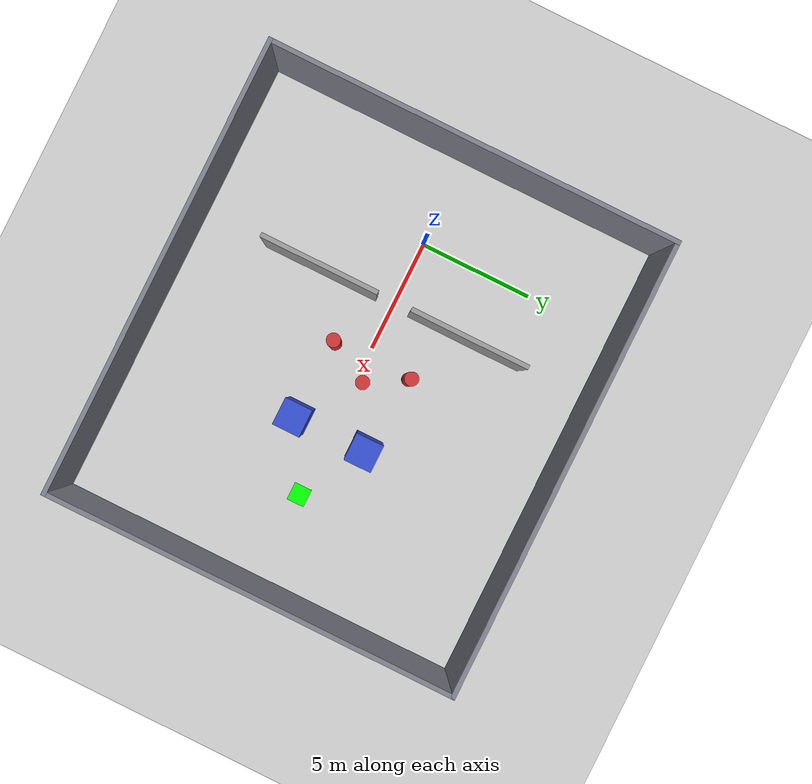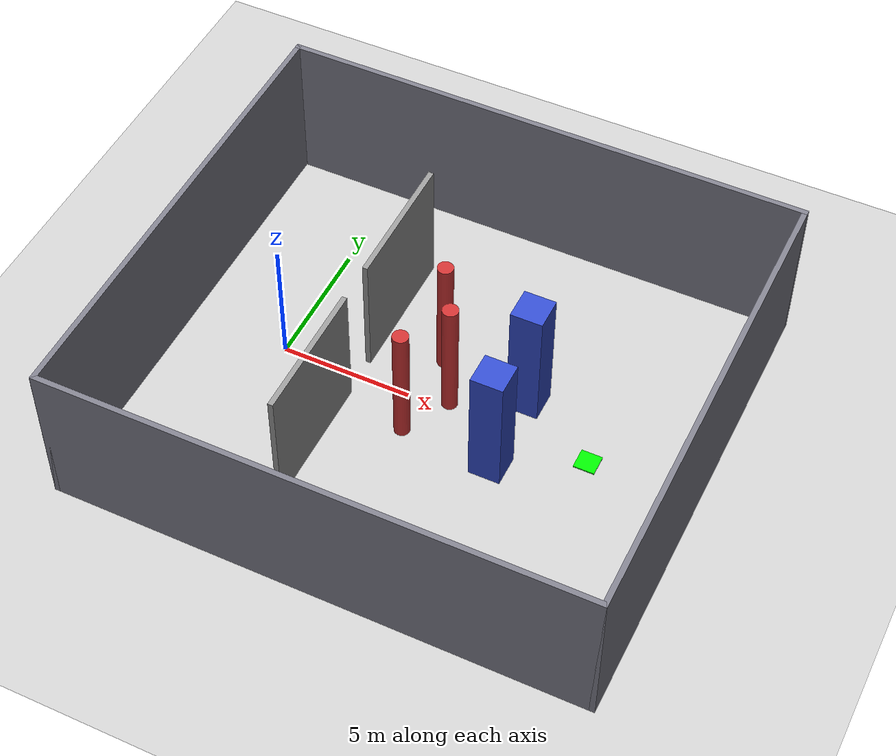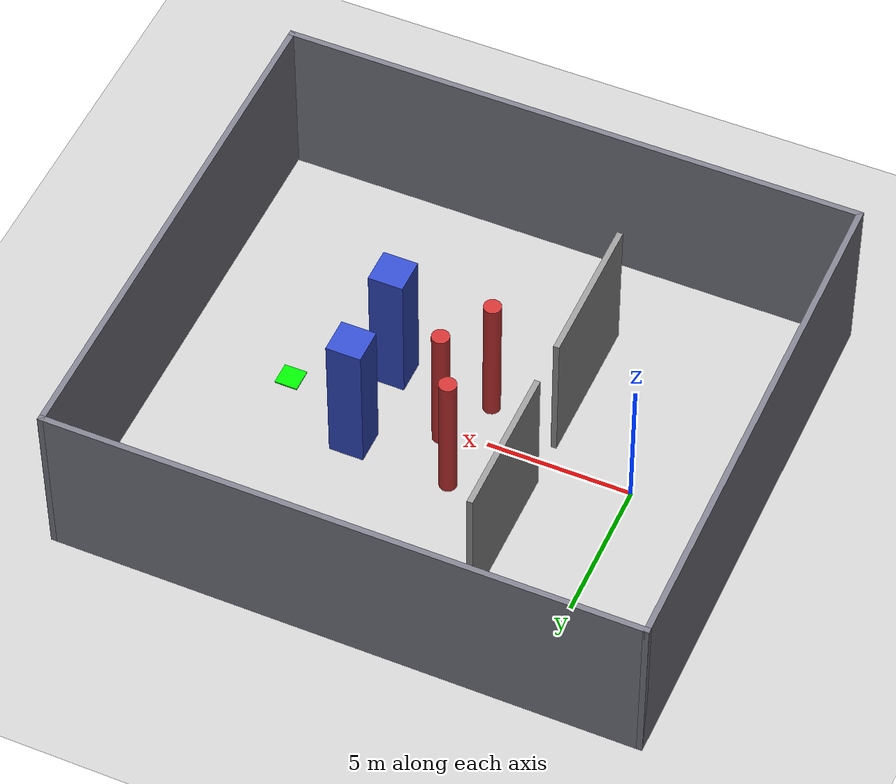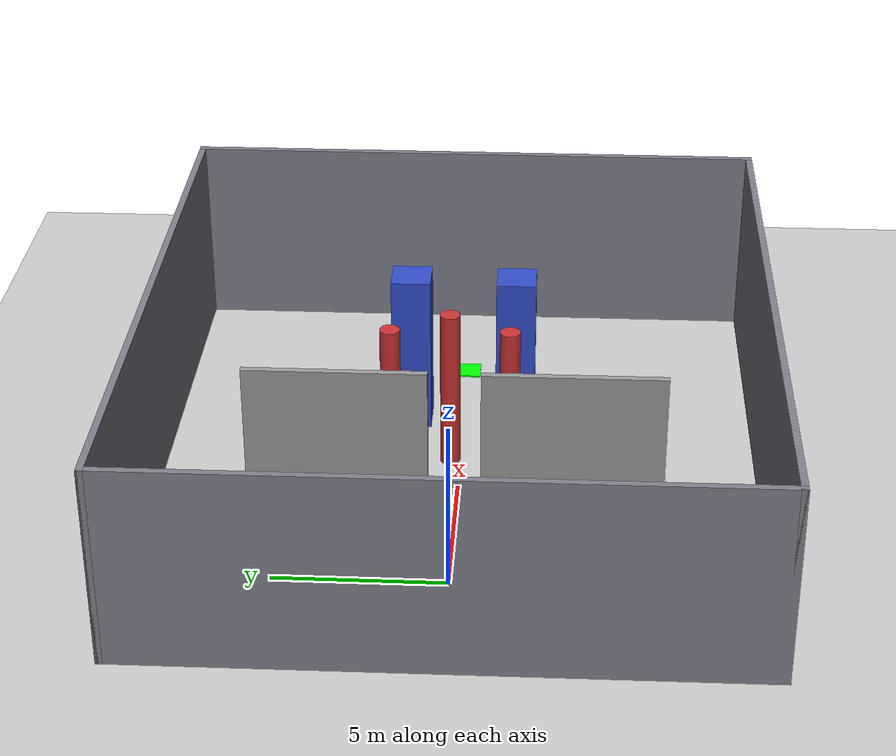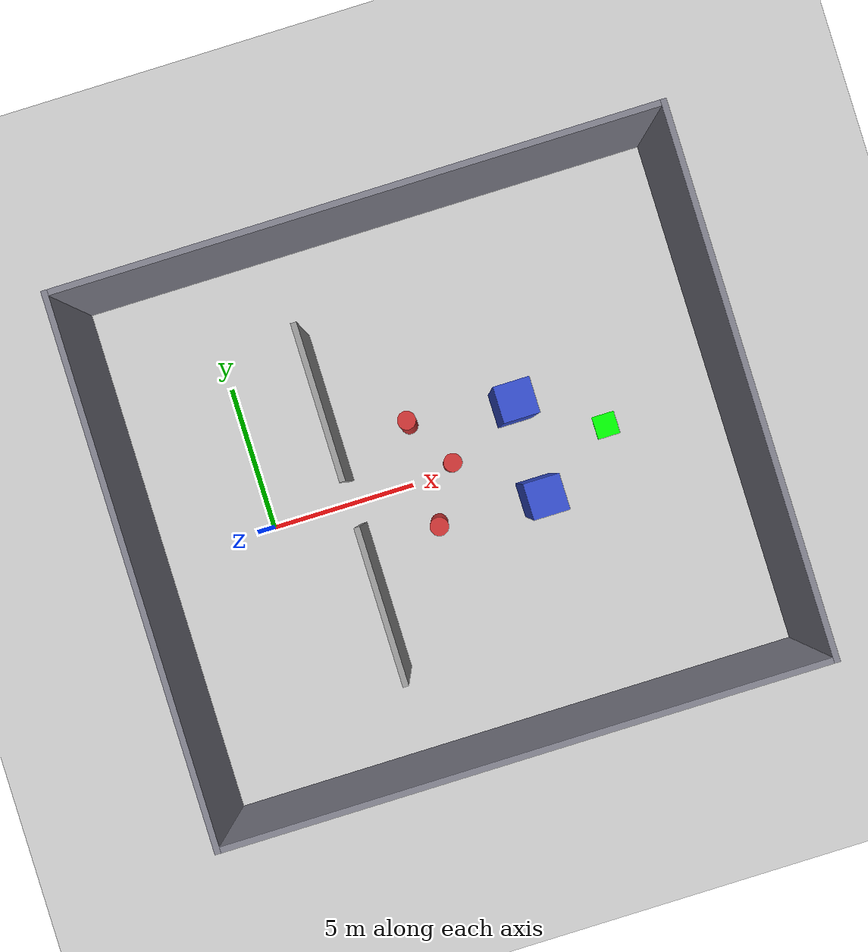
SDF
<sdf version='1.9'>
  <world name='dwa_test'>
    <physics type="ode">
      <max_step_size>0.004</max_step_size>
      <real_time_factor>1.0</real_time_factor>
      <real_time_update_rate>250</real_time_update_rate>
    </physics>
    <plugin name='gz::sim::systems::Physics' filename='gz-sim-physics-system'/>
    <plugin name='gz::sim::systems::UserCommands' filename='gz-sim-user-commands-system'/>
    <plugin name='gz::sim::systems::SceneBroadcaster' filename='gz-sim-scene-broadcaster-system'/>
    <plugin name='gz::sim::systems::Contact' filename='gz-sim-contact-system'/>
    <plugin name='gz::sim::systems::Imu' filename='gz-sim-imu-system'/>
    <plugin name='gz::sim::systems::AirPressure' filename='gz-sim-air-pressure-system'/>
    <plugin name='gz::sim::systems::Sensors' filename='gz-sim-sensors-system'>
      <render_engine>ogre2</render_engine>
    </plugin>
    <gui fullscreen='false'>
      <plugin name='3D View' filename='GzScene3D'>
        <gz-gui>
          <title>3D View</title>
          <property type='bool' key='showTitleBar'>0</property>
          <property type='string' key='state'>docked</property>
        </gz-gui>
        <engine>ogre2</engine>
        <scene>scene</scene>
        <ambient_light>0.6 0.6 0.6</ambient_light>
        <background_color>0.9 0.9 0.9</background_color>
        <camera_pose>-6 0 6 0 0.5 0</camera_pose>
      </plugin>
      <plugin name='World control' filename='WorldControl'>
        <gz-gui>
          <title>World control</title>
          <property type='bool' key='showTitleBar'>0</property>
          <property type='bool' key='resizable'>0</property>
          <property type='double' key='height'>72</property>
          <property type='double' key='width'>121</property>
          <property type='double' key='z'>1</property>
          <property type='string' key='state'>floating</property>
          <anchors target='3D View'>
            <line own='left' target='left'/>
            <line own='bottom' target='bottom'/>
          </anchors>
        </gz-gui>
        <play_pause>1</play_pause>
        <step>1</step>
        <start_paused>1</start_paused>
      </plugin>
      <plugin name='World stats' filename='WorldStats'>
        <gz-gui>
          <title>World stats</title>
          <property type='bool' key='showTitleBar'>0</property>
          <property type='bool' key='resizable'>0</property>
          <property type='double' key='height'>110</property>
          <property type='double' key='width'>290</property>
          <property type='double' key='z'>1</property>
          <property type='string' key='state'>floating</property>
          <anchors target='3D View'>
            <line own='right' target='right'/>
            <line own='bottom' target='bottom'/>
          </anchors>
        </gz-gui>
        <sim_time>1</sim_time>
        <real_time>1</real_time>
        <real_time_factor>1</real_time_factor>
        <iterations>1</iterations>
      </plugin>
      <plugin name='Entity tree' filename='EntityTree'/>
    </gui>
    <gravity>0 0 -9.8</gravity>
    <magnetic_field>6e-06 2.3e-05 -4.2e-05</magnetic_field>
    <atmosphere type='adiabatic'/>
    <scene>
      <grid>false</grid>
      <ambient>0.4 0.4 0.4 1</ambient>
      <background>0.7 0.7 0.7 1</background>
      <shadows>true</shadows>
    </scene>

    <model name='ground_plane'>
      <static>true</static>
      <link name='link'>
        <collision name='collision'>
          <geometry>
            <plane>
              <normal>0 0 1</normal>
              <size>1 1</size>
            </plane>
          </geometry>
          <surface>
            <friction>
              <ode/>
            </friction>
            <bounce/>
            <contact/>
          </surface>
        </collision>
        <visual name='visual'>
          <geometry>
            <plane>
              <normal>0 0 1</normal>
              <size>100 100</size>
            </plane>
          </geometry>
          <material>
            <ambient>0.8 0.8 0.8 1</ambient>
            <diffuse>0.8 0.8 0.8 1</diffuse>
            <specular>0.8 0.8 0.8 1</specular>
          </material>
        </visual>
        <pose>0 0 0 0 -0 0</pose>
        <inertial>
          <pose>0 0 0 0 -0 0</pose>
          <mass>1</mass>
          <inertia>
            <ixx>1</ixx>
            <ixy>0</ixy>
            <ixz>0</ixz>
            <iyy>1</iyy>
            <iyz>0</iyz>
            <izz>1</izz>
          </inertia>
        </inertial>
        <enable_wind>false</enable_wind>
      </link>
      <pose>0 0 0 0 -0 0</pose>
      <self_collide>false</self_collide>
    </model>

    <light name='sunUTC' type='directional'>
      <pose>0 0 500 0 -0 0</pose>
      <cast_shadows>true</cast_shadows>
      <intensity>1</intensity>
      <direction>0.001 0.625 -0.78</direction>
      <diffuse>0.904 0.904 0.904 1</diffuse>
      <specular>0.271 0.271 0.271 1</specular>
      <attenuation>
        <range>2000</range>
        <linear>0</linear>
        <constant>1</constant>
        <quadratic>0</quadratic>
      </attenuation>
      <spot>
        <inner_angle>0</inner_angle>
        <outer_angle>0</outer_angle>
        <falloff>0</falloff>
      </spot>
    </light>

    <!-- ===================== Goal marker ===================== -->
    <!-- Matches scanner.py default goal_x/goal_y = (12, 0) in Gazebo world coords. -->
    <!-- Flat ground marker (visual only, no collision): a 2m LiDAR plane must not -->
    <!-- treat it as an obstacle, and the drone flies over it at 2m without contact. -->
    <model name='goal_marker'>
      <static>true</static>
      <pose>12 0 0.025 0 0 0</pose>
      <link name='link'>
        <visual name='visual'>
          <geometry>
            <box><size>0.8 0.8 0.05</size></box>
          </geometry>
          <material>
            <ambient>0 1 0 1</ambient>
            <diffuse>0 1 0 1</diffuse>
            <emissive>0 0.5 0 1</emissive>
          </material>
        </visual>
      </link>
    </model>

    <!-- ===================== Boundary wall ===================== -->
    <!-- Encloses the arena: x in [-4, 16], y in [-9, 9]. Height 6m so the 2m -->
    <!-- LiDAR plane sees it. Thickness 0.2m. -->

    <model name='boundary_back'>
      <static>true</static>
      <pose>-4 0 3 0 0 0</pose>
      <link name='link'>
        <collision name='collision'>
          <geometry><box><size>0.2 18.2 6</size></box></geometry>
        </collision>
        <visual name='visual'>
          <geometry><box><size>0.2 18.2 6</size></box></geometry>
          <material>
            <ambient>0.5 0.5 0.55 1</ambient>
            <diffuse>0.5 0.5 0.55 1</diffuse>
          </material>
        </visual>
      </link>
    </model>

    <model name='boundary_front'>
      <static>true</static>
      <pose>16 0 3 0 0 0</pose>
      <link name='link'>
        <collision name='collision'>
          <geometry><box><size>0.2 18.2 6</size></box></geometry>
        </collision>
        <visual name='visual'>
          <geometry><box><size>0.2 18.2 6</size></box></geometry>
          <material>
            <ambient>0.5 0.5 0.55 1</ambient>
            <diffuse>0.5 0.5 0.55 1</diffuse>
          </material>
        </visual>
      </link>
    </model>

    <model name='boundary_right'>
      <static>true</static>
      <pose>6 -9 3 0 0 0</pose>
      <link name='link'>
        <collision name='collision'>
          <geometry><box><size>20.2 0.2 6</size></box></geometry>
        </collision>
        <visual name='visual'>
          <geometry><box><size>20.2 0.2 6</size></box></geometry>
          <material>
            <ambient>0.5 0.5 0.55 1</ambient>
            <diffuse>0.5 0.5 0.55 1</diffuse>
          </material>
        </visual>
      </link>
    </model>

    <model name='boundary_left'>
      <static>true</static>
      <pose>6 9 3 0 0 0</pose>
      <link name='link'>
        <collision name='collision'>
          <geometry><box><size>20.2 0.2 6</size></box></geometry>
        </collision>
        <visual name='visual'>
          <geometry><box><size>20.2 0.2 6</size></box></geometry>
          <material>
            <ambient>0.5 0.5 0.55 1</ambient>
            <diffuse>0.5 0.5 0.55 1</diffuse>
          </material>
        </visual>
      </link>
    </model>

    <!-- ============= Obstacle type 1: wall with a gap (x=3) ============= -->
    <!-- Gap centered at y=0, width 1.5m (edges at y=-0.75 and y=0.75). -->

    <model name='wall_gap_right'>
      <static>true</static>
      <pose>3 -3.375 2.5 0 0 0</pose>
      <link name='link'>
        <collision name='collision'>
          <geometry><box><size>0.2 5.25 5</size></box></geometry>
        </collision>
        <visual name='visual'>
          <geometry><box><size>0.2 5.25 5</size></box></geometry>
          <material>
            <ambient>0.6 0.6 0.6 1</ambient>
            <diffuse>0.6 0.6 0.6 1</diffuse>
          </material>
        </visual>
      </link>
    </model>

    <model name='wall_gap_left'>
      <static>true</static>
      <pose>3 3.375 2.5 0 0 0</pose>
      <link name='link'>
        <collision name='collision'>
          <geometry><box><size>0.2 5.25 5</size></box></geometry>
        </collision>
        <visual name='visual'>
          <geometry><box><size>0.2 5.25 5</size></box></geometry>
          <material>
            <ambient>0.6 0.6 0.6 1</ambient>
            <diffuse>0.6 0.6 0.6 1</diffuse>
          </material>
        </visual>
      </link>
    </model>

    <!-- ============= Obstacle type 2: cylinder slalom (x=6) ============= -->
    <!-- Three staggered cylinders forcing a weaving path. -->

    <model name='cylinder_1'>
      <static>true</static>
      <pose>5.5 -1.5 2.5 0 0 0</pose>
      <link name='link'>
        <collision name='collision'>
          <geometry><cylinder><radius>0.3</radius><length>5</length></cylinder></geometry>
        </collision>
        <visual name='visual'>
          <geometry><cylinder><radius>0.3</radius><length>5</length></cylinder></geometry>
          <material>
            <ambient>0.8 0.2 0.2 1</ambient>
            <diffuse>0.8 0.2 0.2 1</diffuse>
          </material>
        </visual>
      </link>
    </model>

    <model name='cylinder_2'>
      <static>true</static>
      <pose>6.5 0.3 2.5 0 0 0</pose>
      <link name='link'>
        <collision name='collision'>
          <geometry><cylinder><radius>0.3</radius><length>5</length></cylinder></geometry>
        </collision>
        <visual name='visual'>
          <geometry><cylinder><radius>0.3</radius><length>5</length></cylinder></geometry>
          <material>
            <ambient>0.8 0.2 0.2 1</ambient>
            <diffuse>0.8 0.2 0.2 1</diffuse>
          </material>
        </visual>
      </link>
    </model>

    <model name='cylinder_3'>
      <static>true</static>
      <pose>5.5 2.0 2.5 0 0 0</pose>
      <link name='link'>
        <collision name='collision'>
          <geometry><cylinder><radius>0.3</radius><length>5</length></cylinder></geometry>
        </collision>
        <visual name='visual'>
          <geometry><cylinder><radius>0.3</radius><length>5</length></cylinder></geometry>
          <material>
            <ambient>0.8 0.2 0.2 1</ambient>
            <diffuse>0.8 0.2 0.2 1</diffuse>
          </material>
        </visual>
      </link>
    </model>

    <!-- ============= Obstacle type 3: box gate (x=9) ============= -->
    <!-- Two square pillars leaving a 2m gap centered at y=0. -->

    <model name='box_right'>
      <static>true</static>
      <pose>9 -1.6 2.5 0 0 0</pose>
      <link name='link'>
        <collision name='collision'>
          <geometry><box><size>1.2 1.2 5</size></box></geometry>
        </collision>
        <visual name='visual'>
          <geometry><box><size>1.2 1.2 5</size></box></geometry>
          <material>
            <ambient>0.2 0.3 0.8 1</ambient>
            <diffuse>0.2 0.3 0.8 1</diffuse>
          </material>
        </visual>
      </link>
    </model>

    <model name='box_left'>
      <static>true</static>
      <pose>9 1.6 2.5 0 0 0</pose>
      <link name='link'>
        <collision name='collision'>
          <geometry><box><size>1.2 1.2 5</size></box></geometry>
        </collision>
        <visual name='visual'>
          <geometry><box><size>1.2 1.2 5</size></box></geometry>
          <material>
            <ambient>0.2 0.3 0.8 1</ambient>
            <diffuse>0.2 0.3 0.8 1</diffuse>
          </material>
        </visual>
      </link>
    </model>

  </world>
</sdf>
